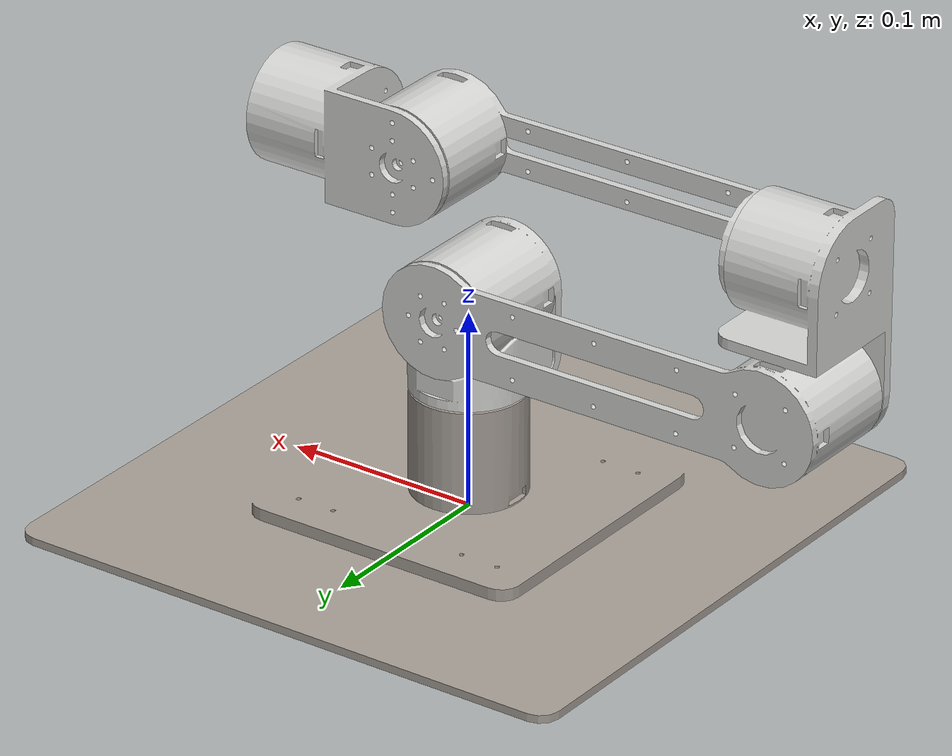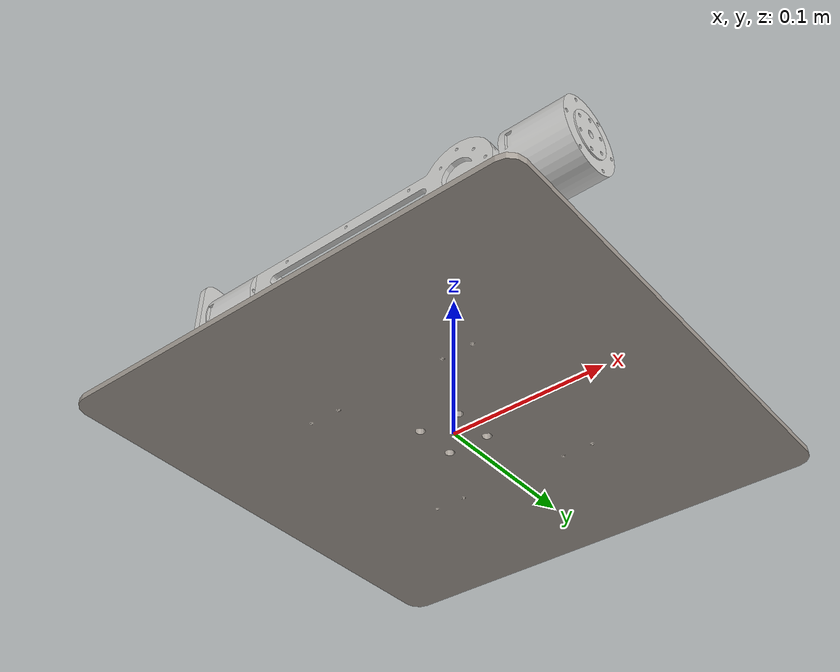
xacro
<?xml version="1.0"?>
<robot name="robot_1" xmlns:xacro="http://www.ros.org/wiki/xacro">
  <xacro:include filename="$(find robot_description)/urdf/robot_1.urdf" />
  <xacro:include filename="$(find robot_description)/urdf/robot_1.ros2_control.xacro" />
</robot>

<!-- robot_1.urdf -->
<robot
  name="robot_1">
  <link
    name="base_link">
    <inertial>
      <origin
        xyz="-4.70844142286264E-08 1.29418732298242E-06 0.0057678"
        rpy="0 0 0" />
      <mass
        value="4.06800157701675" />
      <inertia
        ixx="0.0235898554568089"
        ixy="-9.64268018638175E-11"
        ixz="6.33404608418726E-12"
        iyy="0.023592876806635"
        iyz="9.80269028872486E-08"
        izz="0.0471182504343923" />
    </inertial>
    <visual>
      <origin
        xyz="0 0 0"
        rpy="0 0 0" />
      <geometry>
        <mesh
          filename="package://robot_description/meshes/base_link.STL" />
      </geometry>
      <material
        name="">
        <color
          rgba="0.647058823529412 0.619607843137255 0.588235294117647 1" />
      </material>
    </visual>
    <collision>
      <origin
        xyz="0 0 0"
        rpy="0 0 0" />
      <geometry>
        <mesh
          filename="package://robot_description/meshes/base_link.STL" />
      </geometry>
    </collision>
  </link>
  <link
    name="link_1">
    <inertial>
      <origin
        xyz="-0.0001798 -0.0062513 -0.0147465"
        rpy="0 0 0" />
      <mass
        value="0.6895799" />
      <inertia
        ixx="0.0005223"
        ixy="0.0000002"
        ixz="-0.0000002"
        iyy="0.0004968"
        iyz="0.0000271"
        izz="0.0003605" />
    </inertial>
    <visual>
      <origin
        xyz="0 0 0"
        rpy="0 0 0" />
      <geometry>
        <mesh
          filename="package://robot_description/meshes/link_1.STL" />
      </geometry>
      <material
        name="">
        <color
          rgba="0.827450980392157 0.827450980392157 0.819607843137255 1" />
      </material>
    </visual>
    <collision>
      <origin
        xyz="0 0 0"
        rpy="0 0 0" />
      <geometry>
        <mesh
          filename="package://robot_description/meshes/link_1.STL" />
      </geometry>
    </collision>
  </link>
  <joint
    name="joint_1"
    type="revolute">
    <origin
      xyz="0.00019927 -0.001877 0.10675"
      rpy="0 0 0" />
    <parent
      link="base_link" />
    <child
      link="link_1" />
    <axis
      xyz="0 0 1" />
    <limit
      lower="-3"
      upper="3"
      effort="27"
      velocity="3" />
  </joint>
  <link
    name="link_2">
    <inertial>
      <origin
        xyz="-0.1309040 0.0000000 0.0144901"
        rpy="0 0 0" />
      <mass
        value="0.6370289" />
      <inertia
        ixx="0.0003093"
        ixy="0.0000000"
        ixz="-0.0004001"
        iyy="0.0034922"
        iyz="0.0000000"
        izz="0.0034502" />
    </inertial>
    <visual>
      <origin
        xyz="0 0 0"
        rpy="0 0 0" />
      <geometry>
        <mesh
          filename="package://robot_description/meshes/link_2.STL" />
      </geometry>
      <material
        name="">
        <color
          rgba="0.827450980392157 0.827450980392157 0.819607843137255 1" />
      </material>
    </visual>
    <collision>
      <origin
        xyz="0 0 0"
        rpy="0 0 0" />
      <geometry>
        <mesh
          filename="package://robot_description/meshes/link_2.STL" />
      </geometry>
    </collision>
  </link>
  <joint
    name="joint_2"
    type="revolute">
    <origin
      xyz="0 0 0"
      rpy="-1.5708 0 0" />
    <parent
      link="link_1" />
    <child
      link="link_2" />
    <axis
      xyz="0 0 1" />
    <limit
      lower="-3"
      upper="3"
      effort="27"
      velocity="3" />
  </joint>
  <link
    name="link_3">
    <inertial>
      <origin
        xyz="-0.0058307 0.0495532 0.0062562"
        rpy="0 0 0" />
      <mass
        value="0.7024189" />
      <inertia
        ixx="0.0008960"
        ixy="0.0000733"
        ixz="-0.0000176"
        iyy="0.0004118"
        iyz="0.0001846"
        izz="0.0008387" />
    </inertial>
    <visual>
      <origin
        xyz="0 0 0"
        rpy="0 0 0" />
      <geometry>
        <mesh
          filename="package://robot_description/meshes/link_3.STL" />
      </geometry>
      <material
        name="">
        <color
          rgba="0.827450980392157 0.827450980392157 0.819607843137255 1" />
      </material>
    </visual>
    <collision>
      <origin
        xyz="0 0 0"
        rpy="0 0 0" />
      <geometry>
        <mesh
          filename="package://robot_description/meshes/link_3.STL" />
      </geometry>
    </collision>
  </link>
  <joint
    name="joint_3"
    type="revolute">
    <origin
      xyz="-0.18 0 0"
      rpy="-3.1416 0 0" />
    <parent
      link="link_2" />
    <child
      link="link_3" />
    <axis
      xyz="0 0 1" />
    <limit
      lower="-3"
      upper="3"
      effort="27"
      velocity="3" />
  </joint>
  <link
    name="link_4">
    <inertial>
      <origin
        xyz="0.0002323 0.0070423 0.1600094"
        rpy="0 0 0" />
      <mass
        value="0.5211502" />
      <inertia
        ixx="0.0026660"
        ixy="0.0000000"
        ixz="0.0000000"
        iyy="0.0026491"
        iyz="0.0000789"
        izz="0.0002107" />
    </inertial>
    <visual>
      <origin
        xyz="0 0 0"
        rpy="0 0 0" />
      <geometry>
        <mesh
          filename="package://robot_description/meshes/link_4.STL" />
      </geometry>
      <material
        name="">
        <color
          rgba="0.827450980392157 0.827450980392157 0.819607843137255 1" />
      </material>
    </visual>
    <collision>
      <origin
        xyz="0 0 0"
        rpy="0 0 0" />
      <geometry>
        <mesh
          filename="package://robot_description/meshes/link_4.STL" />
      </geometry>
    </collision>
  </link>
  <joint
    name="joint_4"
    type="revolute">
    <origin
      xyz="-0.00071398 0.071768 -0.00087296"
      rpy="1.5708 0 1.5708" />
    <parent
      link="link_3" />
    <child
      link="link_4" />
    <axis
      xyz="0 0 1" />
    <limit
      lower="-3"
      upper="3"
      effort="7"
      velocity="3" />
  </joint>
  <link
    name="link_5">
    <inertial>
      <origin
        xyz="-0.0000294 -0.0433495 -0.0048578"
        rpy="0 0 0" />
      <mass
        value="0.4734144" />
      <inertia
        ixx="0.0004422"
        ixy="0.0000000"
        ixz="0.0000001"
        iyy="0.0002457"
        iyz="0.0001061"
        izz="0.0004156" />
    </inertial>
    <visual>
      <origin
        xyz="0 0 0"
        rpy="0 0 0" />
      <geometry>
        <mesh
          filename="package://robot_description/meshes/link_5.STL" />
      </geometry>
      <material
        name="">
        <color
          rgba="0.827450980392157 0.827450980392157 0.819607843137255 1" />
      </material>
    </visual>
    <collision>
      <origin
        xyz="0 0 0"
        rpy="0 0 0" />
      <geometry>
        <mesh
          filename="package://robot_description/meshes/link_5.STL" />
      </geometry>
    </collision>
  </link>
  <joint
    name="joint_5"
    type="revolute">
    <origin
      xyz="0.00023228 -0.0022353 0.20325"
      rpy="-1.5708 0 0" />
    <parent
      link="link_4" />
    <child
      link="link_5" />
    <axis
      xyz="0 0 -1" />
    <limit
      lower="-3"
      upper="3"
      effort="7"
      velocity="3" />
  </joint>
  <link
    name="link_6">
    <inertial>
      <origin
        xyz="0.000232281977285045 -6.28905157118442E-11 0.017419494184961"
        rpy="0 0 0" />
      <mass
        value="0.0102510168286635" />
      <inertia
        ixx="8.9340237298249E-07"
        ixy="-1.1511058328978E-22"
        ixz="2.30025241635429E-20"
        iyy="8.9340237298249E-07"
        iyz="2.06828787998769E-20"
        izz="1.58125115444697E-06" />
    </inertial>
    <visual>
      <origin
        xyz="0 0 0"
        rpy="0 0 0" />
      <geometry>
        <mesh
          filename="package://robot_description/meshes/link_6.STL" />
      </geometry>
      <material
        name="">
        <color
          rgba="0.827450980392157 0.827450980392157 0.819607843137255 1" />
      </material>
    </visual>
    <collision>
      <origin
        xyz="0 0 0"
        rpy="0 0 0" />
      <geometry>
        <mesh
          filename="package://robot_description/meshes/link_6.STL" />
      </geometry>
    </collision>
  </link>
  <joint
    name="joint_6"
    type="revolute">
    <origin
      xyz="-0.00023228 -0.061253 0.0014853"
      rpy="1.5708 0 0" />
    <parent
      link="link_5" />
    <child
      link="link_6" />
    <axis
      xyz="0 0 1" />
    <limit
      lower="-3"
      upper="3"
      effort="7"
      velocity="3" />
  </joint>
</robot>
